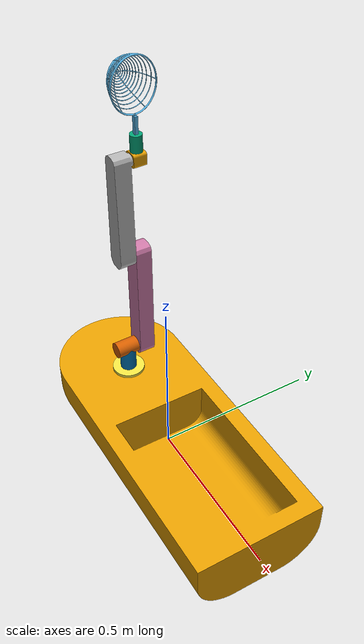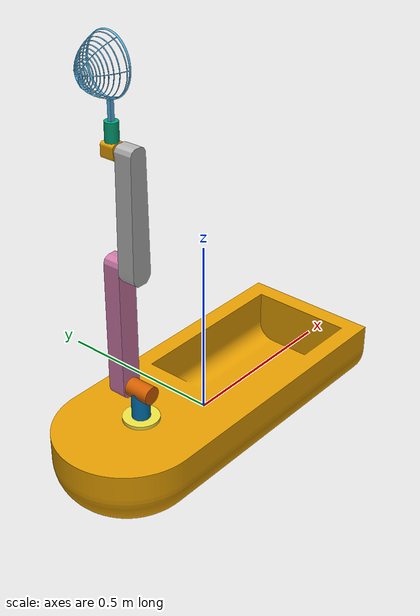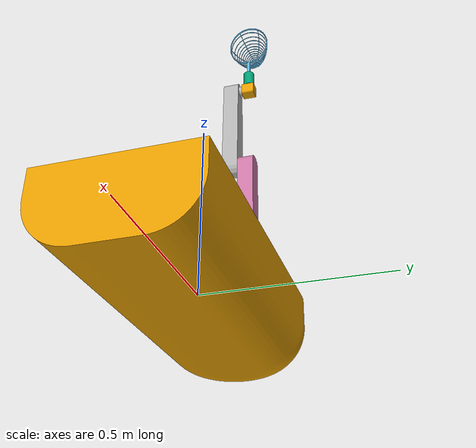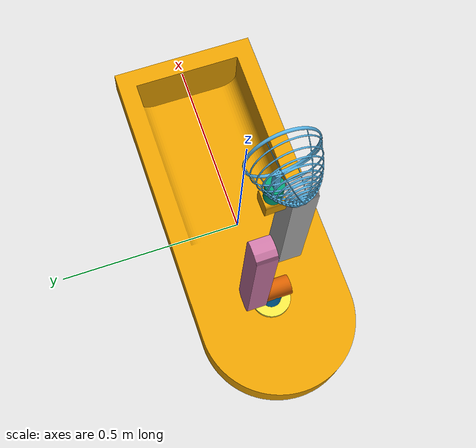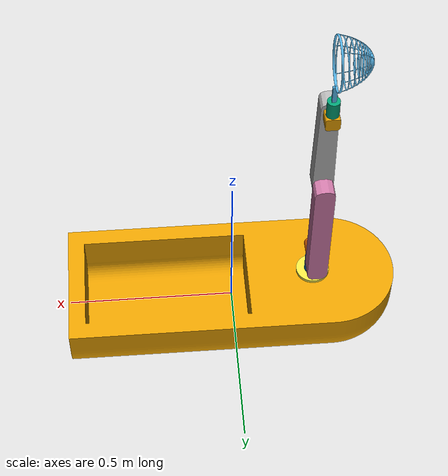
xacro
<?xml version="1.0"?>
<robot name="ele306baat" xmlns:xacro="http://www.ros.org/wiki/xacro">

  <!-- Xacro-parametre (i meter og kg) -->
  <xacro:property name="m" value="30"/>
  <xacro:property name="a" value="1.0"/>  <!-- lengde -->
  <xacro:property name="b" value="0.4"/>  <!-- bredde -->
  <xacro:property name="c" value="0.2"/>  <!-- høyde -->
  <xacro:property name="ox" value="0.5"/>
  <xacro:property name="oy" value="-0.2"/>
  <xacro:property name="oz" value="-0.1"/>
  <xacro:property name="y_off" value="0.22"/>  <!-- avstand sidelengs fra CoM (m) -->
  <xacro:property name="thr_r" value="0.05"/>  <!-- radius på thruster-visual -->
  <xacro:property name="thr_l" value="0.06"/>  <!-- lengde på thruster-visual -->
  <xacro:property name="thr_m" value="0.001"/> <!-- liten masse -->

  <!-- BÅTSKROG / HOVEDKROPP -->
  <link name="base_link">
    <inertial>
      <origin xyz="0 0 -0.1" rpy="0 0 0"/>
      <mass value="${m}"/>
      <inertia
        ixx="${(1.0/12.0)*m*(b*b + c*c)}"
        iyy="${(1.0/12.0)*m*(a*a + c*c)}"
        izz="${(1.0/12.0)*m*(a*a + b*b)}"
        ixy="0" iyz="0" ixz="0"/>
    </inertial>

    <visual name="base_link_visual">
      <origin xyz="${ox} ${oy} ${oz}" rpy="0 0 0"/>
      <geometry>
        <!-- bruk package:// i ROS 2 etter hvert -->
        <mesh filename="$(find usv_package)/meshes/base_link.stl" scale="0.001 0.001 0.001"/>
      </geometry>
    </visual>

    <collision name="base_link_collision">
      <origin xyz="${ox} ${oy} ${oz}" rpy="0 0 0"/>
      <geometry>
        <mesh filename="$(find usv_package)/meshes/base_link.stl" scale="0.001 0.001 0.001"/>
      </geometry>
    </collision>
  </link>

  <!-- VENSTRE THRUSTER (y>0) -->
  <link name="thr_left">
    <inertial>
      <origin xyz="0 0 0" rpy="0 0 0"/>
      <mass value="${thr_m}"/>
      <inertia ixx="1e-6" iyy="1e-6" izz="1e-6" ixy="0" ixz="0" iyz="0"/>
    </inertial>
    <collision>
      <origin xyz="0 0 0" rpy="0 1.57079632679 0"/>
      <geometry>
        <cylinder radius="${thr_r}" length="${thr_l}"/>
      </geometry>
    </collision>
  </link>

  <!-- HØYRE THRUSTER (y<0) -->
  <link name="thr_right">
    <inertial>
      <origin xyz="0 0 0" rpy="0 0 0"/>
      <mass value="${thr_m}"/>
      <inertia ixx="1e-6" iyy="1e-6" izz="1e-6" ixy="0" ixz="0" iyz="0"/>
    </inertial>
    <collision>
      <origin xyz="0 0 0" rpy="0 1.57079632679 0"/>
      <geometry>
        <cylinder radius="${thr_r}" length="${thr_l}"/>
      </geometry>
    </collision>
  </link>

  <!-- LEFT: yaw around z, placed at (0, +y_off, -0.1) -->
  <joint name="thr_left_yaw" type="revolute">
    <parent link="base_link"/>
    <child  link="thr_left"/>
    <origin xyz="0 ${y_off} -0.08" rpy="0 0 0"/>
    <axis xyz="0 0 1"/>                       <!-- yaw-akse -->
    <limit lower="-1.5708" upper="1.5708" effort="15.0" velocity="2.5"/>
    <dynamics damping="1" friction="10"/>
  </joint>

  <!-- RIGHT: yaw around z, placed at (0, -y_off, -0.1) -->
  <joint name="thr_right_yaw" type="revolute">
    <parent link="base_link"/>
    <child  link="thr_right"/>
    <origin xyz="0 ${-y_off} -0.08" rpy="0 0 0"/>
    <axis xyz="0 0 1"/>
    <limit lower="-1.5708" upper="1.5708" effort="15.0" velocity="2.5"/>
    <dynamics damping="1" friction="10"/>
  </joint>

  <!--   ROBOT ARM LINKS & JOINTS   -->

  <link name="5DOF_V2-v1_Base-v1">
    <inertial>
      <origin xyz="-3.50785263573333e-17 3.2205047237486456e-17 0.029999999999999933" rpy="0.0 0.0 0.0"/>
      <mass value="0.01"/>
      <inertia ixx="0.0034217834483820206" iyy="0.0034217834483816966" izz="0.00462403168700253"
               ixy="1.1526424346236517e-16" iyz="2.7533655757593897e-18" ixz="-2.7399403517079433e-17"/>
    </inertial>
    <visual name="5DOF_V2-v1_Base-v1_visual">
      <origin xyz="0.0 0.0 0.0" rpy="0.0 0.0 0.0"/>
      <geometry>
        <mesh filename="$(find usv_package)/meshes/5DOF_V2-v1_Base-v1.stl" scale="0.001 0.001 0.001"/>
      </geometry>
    </visual>
    <collision name="5DOF_V2-v1_Base-v1_collision">
      <origin xyz="0.0 0.0 0.0" rpy="0.0 0.0 0.0"/>
      <geometry>
        <mesh filename="$(find usv_package)/meshes/5DOF_V2-v1_Base-v1.stl" scale="0.001 0.001 0.001"/>
      </geometry>
    </collision>
  </link>

  <link name="5DOF_V2-v1_Base_tube2-v1">
    <inertial>
      <origin xyz="-1.6654054514900177e-18 3.325072459910882e-17 0.03054122508269446" rpy="0.0 0.0 0.0"/>
      <mass value="0.01"/>
      <inertia ixx="0.0004542134596046459" iyy="0.00044058603181367347" izz="0.0002995690214890518"
               ixy="1.0927572052527721e-17" iyz="-9.780555404766658e-21" ixz="-6.891596942663357e-18"/>
    </inertial>
    <visual name="5DOF_V2-v1_Base_tube2-v1_visual">
      <origin xyz="0.0 0.0 0.0" rpy="0.0 0.0 0.0"/>
      <geometry>
        <mesh filename="$(find usv_package)/meshes/5DOF_V2-v1_Base_tube2-v1.stl" scale="0.001 0.001 0.001"/>
      </geometry>
    </visual>
    <collision name="5DOF_V2-v1_Base_tube2-v1_collision">
      <origin xyz="0.0 0.0 0.0" rpy="0.0 0.0 0.0"/>
      <geometry>
        <mesh filename="$(find usv_package)/meshes/5DOF_V2-v1_Base_tube2-v1.stl" scale="0.001 0.001 0.001"/>
      </geometry>
    </collision>
  </link>

  <link name="5DOF_V2-v1_Base_tube-v1">
    <inertial>
      <origin xyz="4.7248414473679183e-17 3.957337929572082e-17 0.057500000000007746" rpy="0.0 0.0 0.0"/>
      <mass value="0.01"/>
      <inertia ixx="0.0022304530623574763" iyy="0.002230453062356116" izz="0.0005539204625058387"
               ixy="-5.66792012332329e-17" iyz="3.9400584574481047e-17" ixz="2.5480589387290446e-19"/>
    </inertial>
    <visual name="5DOF_V2-v1_Base_tube-v1_visual">
      <origin xyz="0.0 0.0 0.0" rpy="0.0 0.0 0.0"/>
      <geometry>
        <mesh filename="$(find usv_package)/meshes/5DOF_V2-v1_Base_tube-v1.stl" scale="0.001 0.001 0.001"/>
      </geometry>
    </visual>
    <collision name="5DOF_V2-v1_Base_tube-v1_collision">
      <origin xyz="0.0 0.0 0.0" rpy="0.0 0.0 0.0"/>
      <geometry>
        <mesh filename="$(find usv_package)/meshes/5DOF_V2-v1_Base_tube-v1.stl" scale="0.001 0.001 0.001"/>
      </geometry>
    </collision>
  </link>

  <link name="5DOF_V2-v1_Ledd1-v1">
    <inertial>
      <origin xyz="-6.753873604593077e-07 0.2134588694840161 0.025487981635571387" rpy="0.0 0.0 0.0"/>
      <mass value="0.01"/>
      <inertia ixx="0.11918586547638825" iyy="0.004785496154870996" izz="0.1195753968143904"
               ixy="3.9887786443593526e-07" iyz="-0.0024238492062195094" ixz="-2.9928866193076637e-09"/>
    </inertial>
    <visual name="5DOF_V2-v1_Ledd1-v1_visual">
      <origin xyz="0.0 -0.03 0.0" rpy="0.0 0.0 0.0"/>
      <geometry>
        <mesh filename="$(find usv_package)/meshes/5DOF_V2-v1_Ledd1-v1.stl" scale="0.001 0.001 0.001"/>
      </geometry>
    </visual>
    <collision name="5DOF_V2-v1_Ledd1-v1_collision">
      <origin xyz="0.0 0.0 0.0" rpy="0.0 0.0 0.0"/>
      <geometry>
        <mesh filename="$(find usv_package)/meshes/5DOF_V2-v1_Ledd1-v1.stl" scale="0.001 0.001 0.001"/>
      </geometry>
    </collision>
  </link>

  <link name="5DOF_V2-v1_Ledd2-v1">
    <inertial>
      <origin xyz="9.738045645997853e-09 0.1808883564974194 0.02553390149019094" rpy="0.0 0.0 0.0"/>
      <mass value="0.01"/>
      <inertia ixx="0.076854691499524" iyy="0.0036753264512904412" izz="0.07694224533843542"
               ixy="-1.0873018443745157e-08" iyz="-0.0015209339212538377" ixz="-2.6955421273972656e-09"/>
    </inertial>
    <visual name="5DOF_V2-v1_Ledd2-v1_visual">
      <origin xyz="0.0 -0.03 0.0" rpy="0.0 0.0 0.0"/>
      <geometry>
        <mesh filename="$(find usv_package)/meshes/5DOF_V2-v1_Ledd2-v1.stl" scale="0.001 0.001 0.001"/>
      </geometry>
    </visual>
    <collision name="5DOF_V2-v1_Ledd2-v1_collision">
      <origin xyz="0.0 -0.03 0.0" rpy="0.0 0.0 0.0"/>
      <geometry>
        <mesh filename="$(find usv_package)/meshes/5DOF_V2-v1_Ledd2-v1.stl" scale="0.001 0.001 0.001"/>
      </geometry>
    </collision>
  </link>

  <link name="5DOF_V2-v1_Ledd-4-v1">
    <inertial>
      <origin xyz="0.020000000000004358 0.020000000000003616 0.017234320051566592" rpy="0.0 0.0 0.0"/>
      <mass value="0.01"/>
      <inertia ixx="9.937381668031846e-05" iyy="9.93738166803096e-05" izz="0.00011088625479222827"
               ixy="1.2510862322193676e-18" iyz="-1.9775176354292115e-20" ixz="-1.1469673138770481e-17"/>
    </inertial>
    <visual name="5DOF_V2-v1_Ledd-4-v1_visual">
      <origin xyz="-0.02 0.02 -0.02" rpy="1.5708 0.0 0.0"/>
      <geometry>
        <mesh filename="$(find usv_package)/meshes/5DOF_V2-v1_Ledd-4-v1.stl" scale="0.001 0.001 0.001"/>
      </geometry>
    </visual>
    <collision name="5DOF_V2-v1_Ledd-4-v1_collision">
      <origin xyz="0.0 0.0 0.0" rpy="1.5708 0.0 0.0"/>
      <geometry>
        <mesh filename="$(find usv_package)/meshes/5DOF_V2-v1_Ledd-4-v1.stl" scale="0.001 0.001 0.001"/>
      </geometry>
    </collision>
  </link>

  <link name="5DOF_V2-v1_fryer-complete-v1">
    <inertial>
      <origin xyz="0.18516803814723812 0.0074877264097060765 0.00021416620249091518" rpy="0.0 0.0 0.0"/>
      <mass value="0.01"/>
      <inertia ixx="0.0006142619467787169" iyy="0.010186938591218588" izz="0.010294427459442155"
               ixy="-0.0012667326354611457" iyz="-2.2136922976051193e-07" ixz="2.2787122485625748e-05"/>
    </inertial>
    <visual name="5DOF_V2-v1_fryer-complete-v1_visual">
      <origin xyz="0.0 0.0 0.0" rpy="0.0 0.0 0.0"/>
      <geometry>
        <mesh filename="$(find usv_package)/meshes/5DOF_V2-v1_fryer-complete-v1.stl" scale="0.001 0.001 0.001"/>
      </geometry>
    </visual>
    <collision name="5DOF_V2-v1_fryer-complete-v1_collision">
      <origin xyz="0.0 0.0 0.0" rpy="0.0 0.0 0.0"/>
      <geometry>
        <mesh filename="$(find usv_package)/meshes/5DOF_V2-v1_fryer-complete-v1.stl" scale="0.001 0.001 0.001"/>
      </geometry>
    </collision>
  </link>

  <link name="5DOF_V2-v1_Ledd5-v1">
    <inertial>
      <origin xyz="5.791883797658625e-17 1.9831390820599319e-16 0.02500000000000081" rpy="0.0 0.0 0.0"/>
      <mass value="0.01"/>
      <inertia ixx="0.00010758500113428109" iyy="0.00010758500113439714" izz="5.782447958594017e-05"
               ixy="-1.2697870912289562e-17" iyz="-1.1350424613618553e-20" ixz="-1.3866654853379093e-17"/>
    </inertial>
    <visual name="5DOF_V2-v1_Ledd5-v1_visual">
      <origin xyz="0.0 0.0 0.0" rpy="0.0 0.0 0.0"/>
      <geometry>
        <mesh filename="$(find usv_package)/meshes/5DOF_V2-v1_Ledd5-v1.stl" scale="0.001 0.001 0.001"/>
      </geometry>
    </visual>
    <collision name="5DOF_V2-v1_Ledd5-v1_collision">
      <origin xyz="0.0 0.0 0.0" rpy="0.0 0.0 0.0"/>
      <geometry>
        <!-- FIKSET: fjernet dobbel $(find usv_package)/ -->
        <mesh filename="$(find usv_package)/meshes/5DOF_V2-v1_Ledd5-v1.stl" scale="0.001 0.001 0.001"/>
      </geometry>
    </collision>
  </link>

  <!-- ARM to BOAT connection -->
  <joint name="arm_to_base" type="fixed">
    <parent link="base_link"/>
    <child  link="5DOF_V2-v1_Base-v1"/>
    <!-- Choose mounting position on the deck. Adjust xyz as needed. -->
    <origin xyz="-0.25 0.0 0.05" rpy="0 0 0"/>
  </joint>

  <!-- INTERNAL ARM JOINTS (as in original URDF) -->

  <joint name="base_rotate" type="continuous">
    <origin xyz="3.4449512753553793e-09 3.219265067855304e-09 0.05999999999999936"
            rpy="2.8608031150340146e-17 1.088186942308888e-15 1.583429200060294"/>
    <parent link="5DOF_V2-v1_Base-v1"/>
    <child  link="5DOF_V2-v1_Base_tube2-v1"/>
    <axis xyz="0 0 1.0"/>
    <limit effort="15.0" velocity="2.5"/>
    <dynamics damping="1" friction="0.1"/>
  </joint>

  <joint name="5DOF_V2-v1_Base_tube2-v1_Rigid-2" type="fixed">
    <origin xyz="-0.04 0.0 0.08"
            rpy="0 1.5708 0"/>
    <parent link="5DOF_V2-v1_Base_tube2-v1"/>
    <child  link="5DOF_V2-v1_Base_tube-v1"/>
  </joint>

  <joint name="shoulder" type="continuous">
    <origin xyz="0. 0 0.12"
            rpy="0 3.14 1.5708"/>
    <parent link="5DOF_V2-v1_Base_tube-v1"/>
    <child  link="5DOF_V2-v1_Ledd1-v1"/>
    <axis xyz="0 0 1"/>
    <limit lower="-2" upper="1.6" effort="15.0" velocity="2.5"/>
    <dynamics damping="1" friction="3"/>
  </joint>

  <joint name="elbow" type="continuous">
    <origin xyz="0 0.35 0.1"
            rpy="0 3.14 0"/>
    <parent link="5DOF_V2-v1_Ledd1-v1"/>
    <child  link="5DOF_V2-v1_Ledd2-v1"/>
    <axis xyz="0 0 1"/>
    <limit effort="15.0" velocity="2.5"/>
    <dynamics damping="1" friction="0.1"/>
  </joint>

  <joint name="tool" type="continuous">
    <origin xyz="-0.0 0 0.02"
            rpy="0 0 0"/>
    <parent link="5DOF_V2-v1_Ledd-4-v1"/>
    <child  link="5DOF_V2-v1_Ledd5-v1"/>
    <axis xyz="0 0 1.0"/>
    <limit effort="1.0" velocity="2.5"/>
    <dynamics damping="0" friction="0.1"/>
  </joint>

  <joint name="5DOF_V2-v1_Ledd5-v1_Rigid-11" type="fixed">
    <origin xyz="-0.012 0 0.1716"
            rpy="1.5708 1.5708 0"/>
    <parent link="5DOF_V2-v1_Ledd5-v1"/>
    <child  link="5DOF_V2-v1_fryer-complete-v1"/>
  </joint>

  <joint name="wrist" type="continuous">
    <origin xyz="0 0.3 0.08"
            rpy="1.570796326794897 -0.012632873265408419 -3.1415926535897913"/>
    <parent link="5DOF_V2-v1_Ledd2-v1"/>
    <child  link="5DOF_V2-v1_Ledd-4-v1"/>
    <axis xyz="0 1 0"/>
  </joint>

  <!--         GAZEBO-OPPSETT       -->

  <!-- Gazebo plugins: Allow Gazebo to find plugins via GAZEBO_PLUGIN_PATH -->
  <gazebo>
    <disableFixedJointLumping>true</disableFixedJointLumping>

    <plugin name="buoyancy" filename="libbuoyancy_plugin.so">
      <fluid_density>1000</fluid_density>
      <surface_z>0.0</surface_z>
      <link name="base_link">
        <waterplane_area>0.4</waterplane_area>
        <height>0.2</height>
        <linear_damping>30.0</linear_damping>
        <angular_damping>30.0</angular_damping>
        <k_righting>50.0</k_righting>
        <cob>
          <x>0</x><y>0</y><z>0.13</z>
        </cob>
      </link>
    </plugin>

    <!-- Plugins to apply force to thruster links for USV propulsion -->
    <plugin name="thr_left_force" filename="libgazebo_ros_force.so">
      <ros>
        <namespace>/usv</namespace>
        <remapping>gazebo_ros_force:=/usv/left_thrust</remapping>
      </ros>
      <link_name>thr_left</link_name>
      <force_frame>link</force_frame>   <!-- Force in the thruster link's frame -->
    </plugin>
    <plugin name="thr_right_force" filename="libgazebo_ros_force.so">
      <ros>
        <namespace>/usv</namespace>
        <remapping>gazebo_ros_force:=/usv/right_thrust</remapping>
      </ros>
      <link_name>thr_right</link_name>
      <force_frame>link</force_frame>
    </plugin>

    <!-- ROS 2 Control plugin for hardware abstraction and controller management -->
    <plugin name="gazebo_ros2_control" filename="libgazebo_ros2_control.so">
      <parameters>$(find usv_package)/config/arm_ros2_control.yaml</parameters>
    </plugin>

    <!-- Odometry plugin to publish ground truth USV position -->
    <plugin name="p3d_base_controller" filename="libgazebo_ros_p3d.so">
      <ros>
        <remapping>odom:=/odom</remapping>
      </ros>
      <frame_name>world</frame_name>
      <body_name>base_link</body_name>
      <update_rate>30.0</update_rate>
      <gaussian_noise>0.0</gaussian_noise>
    </plugin>

  </gazebo>

  <!--        ROS 2 CONTROL         -->

  <ros2_control name="usv_hw" type="system">
    <hardware>
      <plugin>gazebo_ros2_control/GazeboSystem</plugin>
    </hardware>

    <!-- Control of thruster yaw positions -->
    <joint name="thr_left_yaw">
      <command_interface name="position"/>
      <state_interface   name="position"/>
      <state_interface   name="velocity"/>
    </joint>
    <joint name="thr_right_yaw">
      <command_interface name="position"/>
      <state_interface   name="position"/>
      <state_interface   name="velocity"/>
    </joint>

      <!-- ARM-LEDENE (posisjonsstyring) -->
    <joint name="base_rotate">
      <command_interface name="position"/>
      <state_interface   name="position"/>
      <state_interface   name="velocity"/>
    </joint>

    <joint name="shoulder">
      <command_interface name="position"/>
      <state_interface   name="position"/>
      <state_interface   name="velocity"/>
    </joint>

    <joint name="elbow">
      <command_interface name="position"/>
      <state_interface   name="position"/>
      <state_interface   name="velocity"/>
    </joint>

    <joint name="wrist">
      <command_interface name="position"/>
      <state_interface   name="position"/>
      <state_interface   name="velocity"/>
    </joint>

    <joint name="tool">
      <command_interface name="position"/>
      <state_interface   name="position"/>
      <state_interface   name="velocity"/>
    </joint>
  </ros2_control>

</robot>
